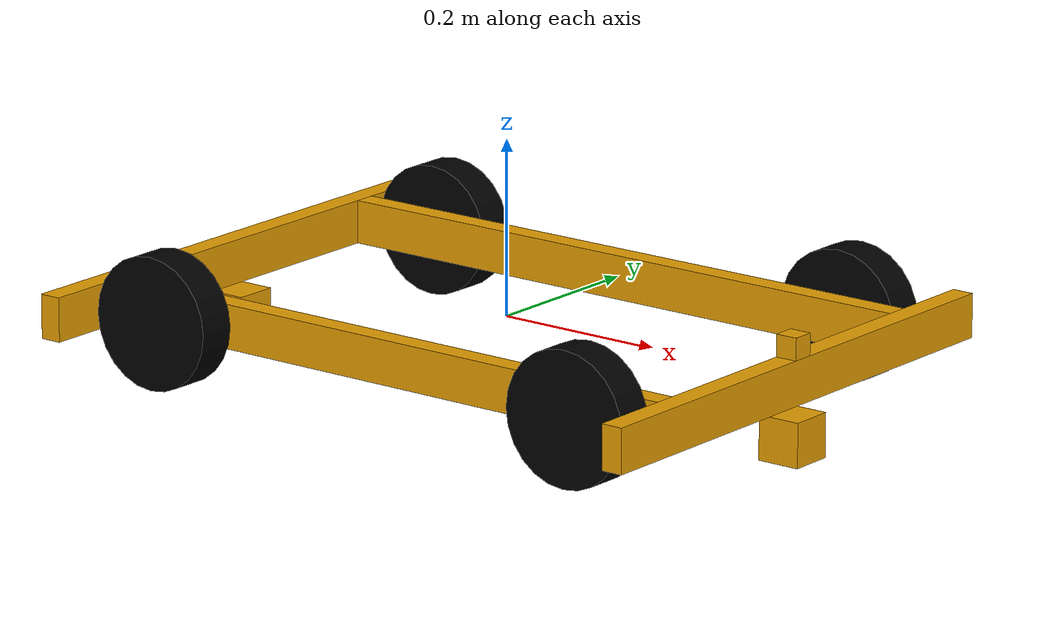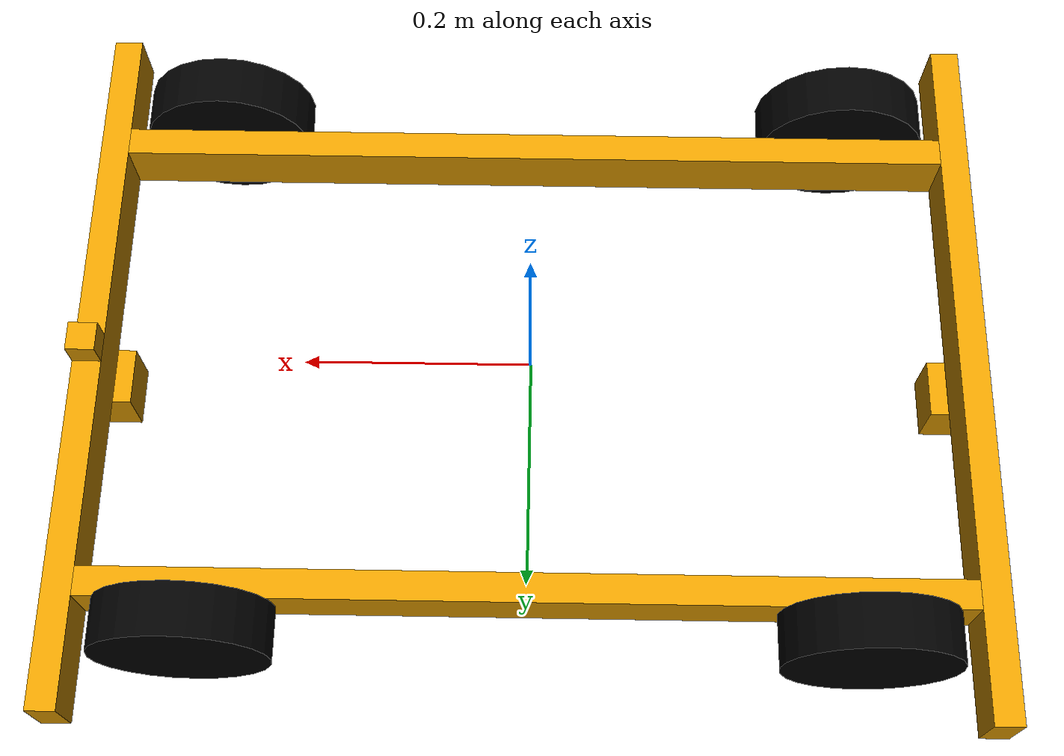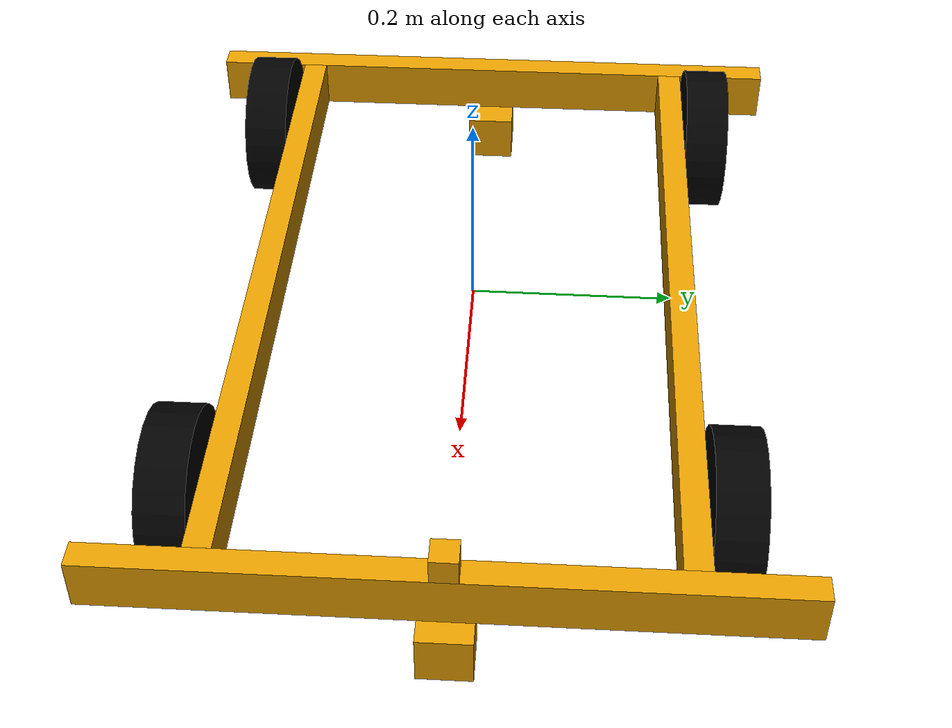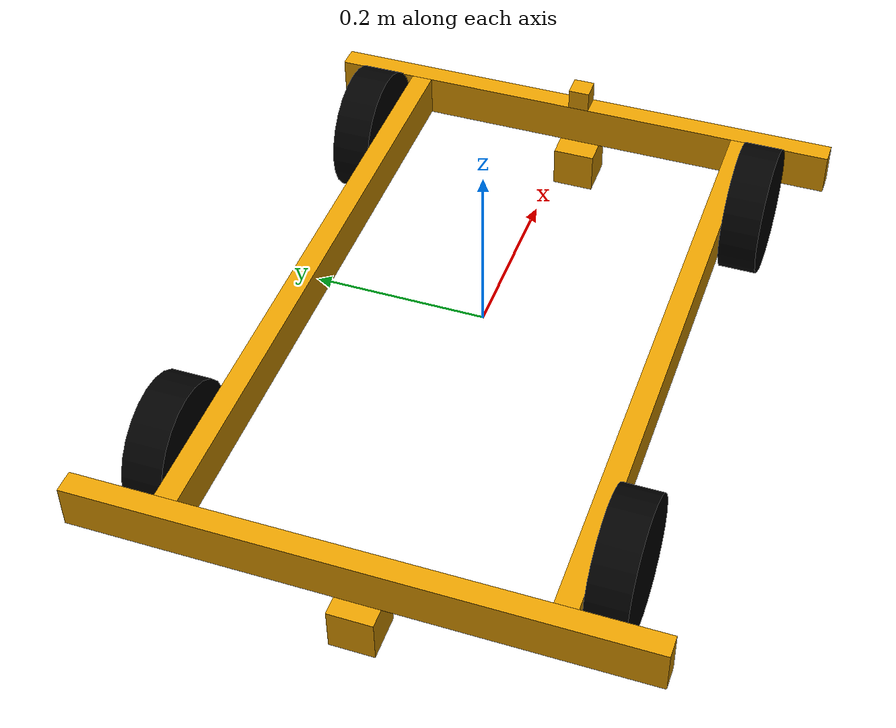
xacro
<?xml version="1.0" ?>
<robot name="robomagellan_2024" xmlns:xacro="http://ros.org/wiki/xacro">

  <xacro:property name="sidebar_length" value="0.7493"/>
  <xacro:property name="sidebar_width" value="0.0254"/>
  <xacro:property name="sidebar_height" value="0.0508"/>
  <xacro:property name="sidebar_y_offset" value="0.20955"/>

  <xacro:property name="frontbar_length" value="0.635"/>
  <xacro:property name="frontbar_width" value="0.0254"/>
  <xacro:property name="frontbar_height" value="0.0508"/>
  <xacro:property name="frontbar_x_offset" value="0.38735"/>

  <xacro:property name="wheel_radius" value="0.0762"/>
  <xacro:property name="wheel_width" value="0.045085"/>
  <xacro:property name="wheel_mass" value="0.36196671"/>
  <xacro:property name="wheel_x_offset" value="0.28575"/>
  <xacro:property name="wheel_y_offset" value="0.2447925"/>

  <!-- Macro to create the side bars -->
  <xacro:macro name="sidebar" params="prefix reflect">
    <visual name="${prefix}_side_visual">
      <origin xyz="0 ${sidebar_y_offset*reflect} 0" rpy="0 0 0"/>
      <geometry>
        <box size="${sidebar_length} ${sidebar_width} ${sidebar_height}"/>
      </geometry>
    </visual>
    <collision name="${prefix}_side_collision">
      <origin xyz="0 ${sidebar_y_offset*reflect} 0" rpy="0 0 0"/>
      <geometry>
        <box size="${sidebar_length} ${sidebar_width} ${sidebar_height}"/>
      </geometry>
    </collision>
  </xacro:macro>

  <!-- Macro to create the front/rear bars -->
  <xacro:macro name="frontbar" params="prefix reflect">
    <visual name="${prefix}_visual">
      <origin xyz="${frontbar_x_offset*reflect} 0 0" rpy="0 0 1.5708"/>
      <geometry>
        <box size="${frontbar_length} ${frontbar_width} ${frontbar_height}"/>
      </geometry>
    </visual>
    <collision name="${prefix}_collision">
      <origin xyz="${frontbar_x_offset*reflect} 0 0" rpy="0 0 1.5708"/>
      <geometry>
        <box size="${frontbar_length} ${frontbar_width} ${frontbar_height}"/>
      </geometry>
    </collision>
  </xacro:macro>

  <!-- Macro to create the wheels -->
  <xacro:macro name="wheel" params="prefix suffix reflectx reflecty">
    <link name="${prefix}_${suffix}_wheel">
      <inertial>
        <mass value="${wheel_mass}"/>
        <inertia ixx="0.0005867" iyy="0.0005867" izz="0.0010509" ixy="0.0" ixz="0.0" iyz="0.0"/>
      </inertial>
      <visual>
        <geometry>
          <cylinder length="${wheel_width}" radius="${wheel_radius}"/>
        </geometry>
       <material name="black"/>
        <origin rpy="1.5708 0 0" xyz="0 0 0"/>
      </visual>
      <collision>
        <geometry>
          <cylinder length="${wheel_width}" radius="${wheel_radius}"/>
        </geometry>
        <origin rpy="1.5708 0 0" xyz="0 0 0"/>
      </collision>
    </link>

    <!-- Joint connecting this wheel to the base_link -->
    <joint name="${prefix}_${suffix}_joint" type="continuous">
      <axis xyz="0 1 0" rpy="0 0 0"/>
      <parent link="base_link"/>
      <child link="${prefix}_${suffix}_wheel"/>
      <origin xyz="${reflectx*wheel_x_offset} ${reflecty*wheel_y_offset} 0.0"
              rpy="0 0 0"/>
    </joint>

    <!--
      This block provides Gazebo with information on the wheel's physical
      properties.
    -->
    <gazebo reference="${prefix}_${suffix}_wheel">
      <kp value="10000000.0"/>
      <kd value="1.0"/>
      <material>Gazebo/Black</material>

      <!-- Friction coefficients -->
      <mu1 value="0.001"/>
      <mu2 value="0.001"/>
    </gazebo>

    <!--
      This block connects the wheel joint to an actuator (motor), which informs
      both the simulation and visualization of the robot.
    -->
    <transmission name="${prefix}_${suffix}_wheel_trans">
      <type>transmission_interface/SimpleTransmission</type>
      <actuator name="${prefix}_${suffix}_wheel_motor">
        <mechanicalReduction>1</mechanicalReduction>
      </actuator>
      <joint name="${prefix}_${suffix}_joint">
        <hardwareInterface>hardware_interface/VelocityJointInterface</hardwareInterface>
      </joint>
    </transmission>
  </xacro:macro>

  <material name="black">
    <color rgba="0 0 0 1"/>
  </material>

  <link name="base_link">
    <!--
      The chassis will be represented with a cuboid with the above dimensions
      and a weight of 50 lbs (the max limit allowed).
    -->
    <inertial>
      <mass value="22.68"/>
      <inertia ixx="0.767" iyy="1.2145" izz="1.9717" ixy="0.0" ixz="0.0" iyz="0.0"/>
    </inertial>

    <!-- Left/Right sidebars -->
    <xacro:sidebar prefix="left" reflect="1"/>
    <xacro:sidebar prefix="right" reflect="-1"/>

    <!-- Front/Rear bars -->
    <xacro:frontbar prefix="front" reflect="1"/>
    <xacro:frontbar prefix="rear" reflect="-1"/>

    <!--
      For visualization purposes a small cube will be added to the front of the
      robot.  No collision is used because the real robot does not have this
      cube.
    -->
    <visual name="cube_visual">
      <geometry>
        <box size="0.0254 0.0254 0.0254"/>
      </geometry>
      <origin rpy="0 0 0" xyz="0.38735 0 0.0381"/>
    </visual>

    <!-- Debug Blocks -->
    <visual name="front_debug_block_visual">
      <geometry>
        <box size="0.0508 0.0508 0.0508"/>
      </geometry>
      <origin rpy="0 0 0" xyz="0.38735 0 -0.0635"/>
    </visual>
    <collision name="front_debug_block_collision">
      <geometry>
        <box size="0.0508 0.0508 0.0508"/>
      </geometry>
      <origin rpy="0 0 0" xyz="0.38735 0 -0.0635"/>
    </collision>

    <visual name="rear_debug_block_visual">
      <geometry>
        <box size="0.0508 0.0508 0.0508"/>
      </geometry>
      <origin rpy="0 0 0" xyz="-0.38735 0 -0.0635"/>
    </visual>
    <collision name="rear_debug_block_collision">
      <geometry>
        <box size="0.0508 0.0508 0.0508"/>
      </geometry>
      <origin rpy="0 0 0" xyz="-0.38735 0 -0.0635"/>
    </collision>
  </link>

  <!-- Wheels -->
  <xacro:wheel prefix="left" suffix="front" reflectx="1" reflecty="1"/>
  <xacro:wheel prefix="left" suffix="rear" reflectx="-1" reflecty="1"/>

  <xacro:wheel prefix="right" suffix="front" reflectx="1" reflecty="-1"/>
  <xacro:wheel prefix="right" suffix="rear" reflectx="-1" reflecty="-1"/>

  <!-- Gazebo Plugin for Differential Drive Controller -->
  <gazebo>
    <plugin name="gazebo_ros_control" filename="libgazebo_ros_control.so">
      <robotNamespace>/</robotNamespace>
    </plugin>
  </gazebo>
</robot>
